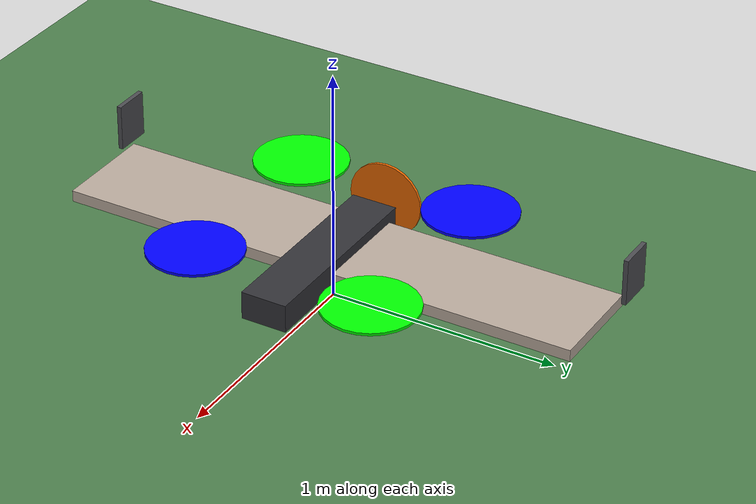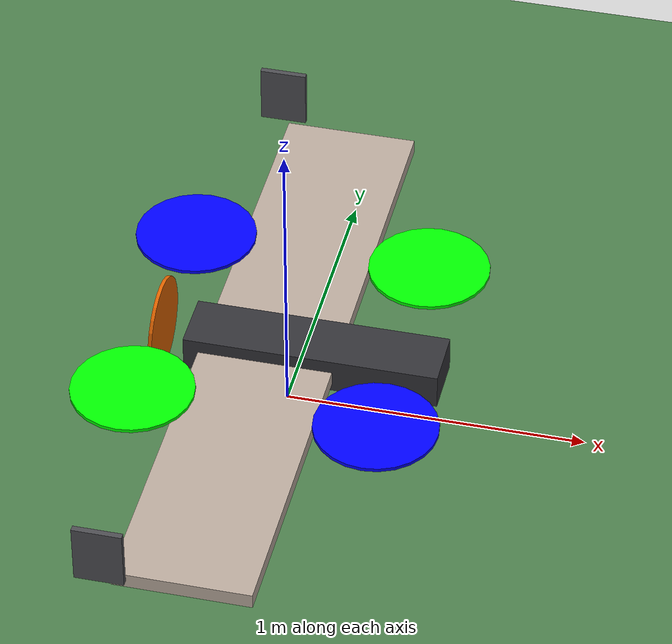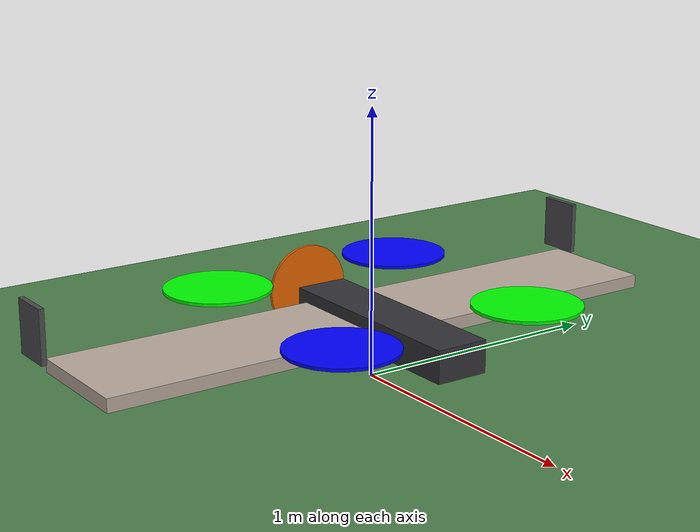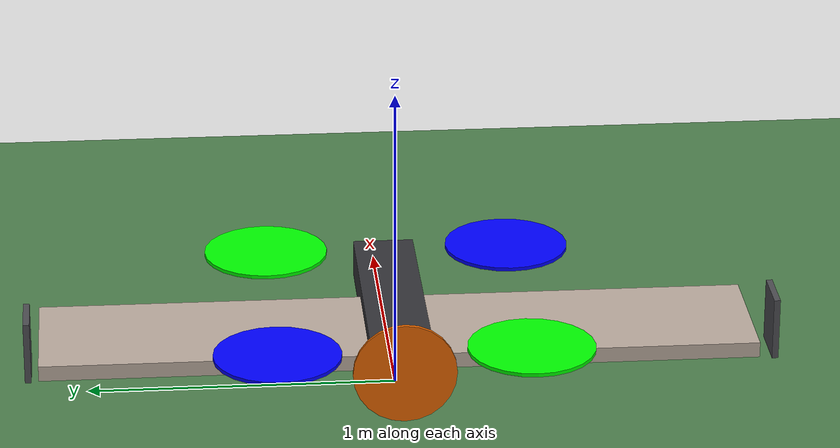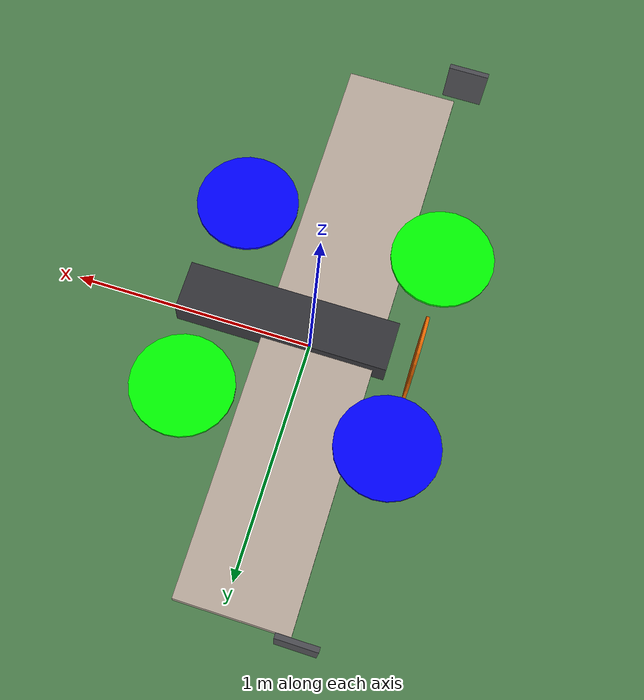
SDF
<?xml version="1.0" ?>
<!-- quadplane_runway.sdf : runway world for the flying-wing quadplane.
     real_time_factor -1.0 lets SIM_SPEEDUP run faster than real time. -->
<sdf version="1.9">
  <world name="quadplane_runway">
    <physics name="1ms" type="ignore">
      <max_step_size>0.001</max_step_size>
      <real_time_factor>-1.0</real_time_factor>
    </physics>

    <plugin filename="gz-sim-physics-system"          name="gz::sim::systems::Physics"></plugin>
    <plugin filename="gz-sim-user-commands-system"    name="gz::sim::systems::UserCommands"></plugin>
    <plugin filename="gz-sim-scene-broadcaster-system" name="gz::sim::systems::SceneBroadcaster"></plugin>
    <plugin filename="gz-sim-imu-system"              name="gz::sim::systems::Imu"></plugin>
    <plugin filename="gz-sim-navsat-system"           name="gz::sim::systems::NavSat"></plugin>

    <scene>
      <ambient>1.0 1.0 1.0</ambient>
      <background>0.8 0.8 0.8</background>
      <sky></sky>
    </scene>

    <spherical_coordinates>
      <latitude_deg>-35.363262</latitude_deg>
      <longitude_deg>149.165237</longitude_deg>
      <elevation>584</elevation>
      <heading_deg>0</heading_deg>
      <surface_model>EARTH_WGS84</surface_model>
    </spherical_coordinates>

    <light type="directional" name="sun">
      <cast_shadows>true</cast_shadows>
      <pose>0 0 10 0 0 0</pose>
      <diffuse>0.8 0.8 0.8 1</diffuse>
      <specular>0.8 0.8 0.8 1</specular>
      <attenuation><range>1000</range><constant>0.9</constant><linear>0.01</linear><quadratic>0.001</quadratic></attenuation>
      <direction>-0.5 0.1 -0.9</direction>
    </light>

    <!-- ground (self-contained fallback if model://runway is not on the resource path) -->
    <model name="ground_plane">
      <static>true</static>
      <link name="link">
        <collision name="collision">
          <geometry><plane><normal>0 0 1</normal><size>2000 2000</size></plane></geometry>
          <surface><friction><ode><mu>1.0</mu><mu2>1.0</mu2></ode></friction></surface>
        </collision>
        <visual name="visual">
          <geometry><plane><normal>0 0 1</normal><size>2000 2000</size></plane></geometry>
          <material><ambient>0.3 0.5 0.3 1</ambient><diffuse>0.3 0.5 0.3 1</diffuse></material>
        </visual>
      </link>
    </model>

    <!-- the vehicle: already X-forward / Z-up, so no rotation; raise so skids touch ground -->
    <include>
      <uri>model://flying_wing_quadplane</uri>
      <pose degrees="true">0 0 0.20 0 0 0</pose>
    </include>

  </world>
</sdf>

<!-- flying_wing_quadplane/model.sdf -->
<sdf version="1.9">
  <model name="flying_wing_quadplane">
    <pose>0 0 0 0 0 0</pose>

    <!-- ============================ BODY ============================ -->
    <link name="base_link">
      <inertial>
        <!-- Full vehicle mass/inertia about CG (from XFLR5 point masses + 4.5 kg wing). -->
        <pose>0 0 0 0 0 0</pose>
        <mass>10.26</mass>
        <inertia>
          <ixx>1.9397</ixx>   <!-- roll  -->
          <iyy>0.4599</iyy>   <!-- pitch -->
          <izz>2.3685</izz>   <!-- yaw   -->
          <ixy>0</ixy>
          <ixz>0.0355</ixz>
          <iyz>0</iyz>
        </inertia>
      </inertial>

      <!-- visual: wing planform (box stand-in; swap for wing.dae mesh later) -->
      <visual name="wing_visual">
        <pose>-0.05 0 0 0 0 0</pose>
        <geometry><box><size>0.45 2.30 0.05</size></box></geometry>
        <material>
          <ambient>0.73 0.67 0.62 1</ambient>
          <diffuse>0.73 0.67 0.62 1</diffuse>
        </material>
      </visual>
      <!-- visual: centre body / nose -->
      <visual name="body_visual">
        <pose>0.10 0 0.01 0 0 0</pose>
        <geometry><box><size>0.85 0.20 0.12</size></box></geometry>
        <material>
          <ambient>0.2 0.2 0.22 1</ambient>
          <diffuse>0.2 0.2 0.22 1</diffuse>
        </material>
      </visual>
      <!-- visual: winglets -->
      <visual name="winglet_left_visual">
        <pose>-0.30 1.18 0.12 0 0 0</pose>
        <geometry><box><size>0.16 0.02 0.20</size></box></geometry>
        <material><ambient>0.3 0.3 0.32 1</ambient><diffuse>0.3 0.3 0.32 1</diffuse></material>
      </visual>
      <visual name="winglet_right_visual">
        <pose>-0.30 -1.18 0.12 0 0 0</pose>
        <geometry><box><size>0.16 0.02 0.20</size></box></geometry>
        <material><ambient>0.3 0.3 0.32 1</ambient><diffuse>0.3 0.3 0.32 1</diffuse></material>
      </visual>

      <!-- collision: wing slab + belly skids so it rests on the runway -->
      <collision name="wing_collision">
        <pose>-0.05 0 0 0 0 0</pose>
        <geometry><box><size>0.45 2.30 0.05</size></box></geometry>
      </collision>
      <collision name="skid_front">
        <pose>0.20 0 -0.10 0 0 0</pose>
        <geometry><box><size>0.06 0.30 0.16</size></box></geometry>
        <surface><friction><ode><mu>1.0</mu><mu2>1.0</mu2></ode></friction></surface>
      </collision>
      <collision name="skid_rear">
        <pose>-0.30 0 -0.10 0 0 0</pose>
        <geometry><box><size>0.06 0.30 0.16</size></box></geometry>
        <surface><friction><ode><mu>1.0</mu><mu2>1.0</mu2></ode></friction></surface>
      </collision>
    </link>

    <!-- ============================ IMU ============================ -->
    <link name="imu_link">
      <inertial>
        <mass>0.05</mass>
        <inertia><ixx>1e-5</ixx><ixy>0</ixy><ixz>0</ixz><iyy>1e-5</iyy><iyz>0</iyz><izz>1e-5</izz></inertia>
      </inertial>
      <sensor name="imu_sensor" type="imu">
        <gz_frame_id>imu_link</gz_frame_id>
        <pose degrees="true">0 0 0 180 0 0</pose>
        <always_on>1</always_on>
        <update_rate>1000.0</update_rate>
      </sensor>
    </link>
    <joint name="imu_joint" type="revolute">
      <parent>base_link</parent>
      <child>imu_link</child>
      <axis>
        <xyz>0 0 1</xyz>
        <limit><lower>0</lower><upper>0</upper><effort>0</effort><velocity>0</velocity></limit>
        <dynamics><damping>1.0</damping></dynamics>
      </axis>
    </joint>

    <!-- ===================== LIFT ROTORS (Quad-X) ===================== -->
    <!-- Motor map (ArduPilot QuadPlane): rotor_0 M1 FR/CCW, rotor_1 M2 RL/CCW,
         rotor_2 M3 FL/CW, rotor_3 M4 RR/CW  (identical ordering to iris). -->

    <!-- rotor_0 : FRONT-RIGHT, CCW -->
    <link name="rotor_0">
      <pose>0.390 -0.400 0.10 0 0 0</pose>
      <inertial><mass>0.08</mass>
        <inertia><ixx>4.0e-4</ixx><ixy>0</ixy><ixz>0</ixz><iyy>4.0e-4</iyy><iyz>0</iyz><izz>8.0e-4</izz></inertia>
      </inertial>
      <visual name="visual"><geometry><cylinder><radius>0.203</radius><length>0.012</length></cylinder></geometry>
        <material><ambient>0 0 1 1</ambient><diffuse>0 0 1 1</diffuse></material></visual>
      <collision name="collision"><geometry><cylinder><radius>0.203</radius><length>0.012</length></cylinder></geometry></collision>
    </link>
    <joint name="rotor_0_joint" type="revolute">
      <parent>base_link</parent><child>rotor_0</child>
      <axis><xyz>0 0 1</xyz><limit><lower>-1e16</lower><upper>1e16</upper></limit><dynamics><damping>0.004</damping></dynamics></axis>
    </joint>

    <!-- rotor_1 : REAR-LEFT, CCW -->
    <link name="rotor_1">
      <pose>-0.410 0.400 0.10 0 0 0</pose>
      <inertial><mass>0.08</mass>
        <inertia><ixx>4.0e-4</ixx><ixy>0</ixy><ixz>0</ixz><iyy>4.0e-4</iyy><iyz>0</iyz><izz>8.0e-4</izz></inertia>
      </inertial>
      <visual name="visual"><geometry><cylinder><radius>0.203</radius><length>0.012</length></cylinder></geometry>
        <material><ambient>0 0 1 1</ambient><diffuse>0 0 1 1</diffuse></material></visual>
      <collision name="collision"><geometry><cylinder><radius>0.203</radius><length>0.012</length></cylinder></geometry></collision>
    </link>
    <joint name="rotor_1_joint" type="revolute">
      <parent>base_link</parent><child>rotor_1</child>
      <axis><xyz>0 0 1</xyz><limit><lower>-1e16</lower><upper>1e16</upper></limit><dynamics><damping>0.004</damping></dynamics></axis>
    </joint>

    <!-- rotor_2 : FRONT-LEFT, CW -->
    <link name="rotor_2">
      <pose>0.390 0.400 0.10 0 0 0</pose>
      <inertial><mass>0.08</mass>
        <inertia><ixx>4.0e-4</ixx><ixy>0</ixy><ixz>0</ixz><iyy>4.0e-4</iyy><iyz>0</iyz><izz>8.0e-4</izz></inertia>
      </inertial>
      <visual name="visual"><geometry><cylinder><radius>0.203</radius><length>0.012</length></cylinder></geometry>
        <material><ambient>0 1 0 1</ambient><diffuse>0 1 0 1</diffuse></material></visual>
      <collision name="collision"><geometry><cylinder><radius>0.203</radius><length>0.012</length></cylinder></geometry></collision>
    </link>
    <joint name="rotor_2_joint" type="revolute">
      <parent>base_link</parent><child>rotor_2</child>
      <axis><xyz>0 0 1</xyz><limit><lower>-1e16</lower><upper>1e16</upper></limit><dynamics><damping>0.004</damping></dynamics></axis>
    </joint>

    <!-- rotor_3 : REAR-RIGHT, CW -->
    <link name="rotor_3">
      <pose>-0.410 -0.400 0.10 0 0 0</pose>
      <inertial><mass>0.08</mass>
        <inertia><ixx>4.0e-4</ixx><ixy>0</ixy><ixz>0</ixz><iyy>4.0e-4</iyy><iyz>0</iyz><izz>8.0e-4</izz></inertia>
      </inertial>
      <visual name="visual"><geometry><cylinder><radius>0.203</radius><length>0.012</length></cylinder></geometry>
        <material><ambient>0 1 0 1</ambient><diffuse>0 1 0 1</diffuse></material></visual>
      <collision name="collision"><geometry><cylinder><radius>0.203</radius><length>0.012</length></cylinder></geometry></collision>
    </link>
    <joint name="rotor_3_joint" type="revolute">
      <parent>base_link</parent><child>rotor_3</child>
      <axis><xyz>0 0 1</xyz><limit><lower>-1e16</lower><upper>1e16</upper></limit><dynamics><damping>0.004</damping></dynamics></axis>
    </joint>

    <!-- ===================== REAR PUSHER (cruise) ===================== -->
    <link name="pusher_prop">
      <pose>-0.42 0 0.03 0 0 0</pose>
      <inertial><mass>0.10</mass>
        <inertia><ixx>3.0e-4</ixx><ixy>0</ixy><ixz>0</ixz><iyy>3.0e-4</iyy><iyz>0</iyz><izz>6.0e-4</izz></inertia>
      </inertial>
      <visual name="visual"><pose>0 0 0 0 1.5708 0</pose>
        <geometry><cylinder><radius>0.165</radius><length>0.012</length></cylinder></geometry>
        <material><ambient>0.9 0.4 0 1</ambient><diffuse>0.9 0.4 0 1</diffuse></material></visual>
    </link>
    <joint name="pusher_joint" type="revolute">
      <parent>base_link</parent><child>pusher_prop</child>
      <axis><xyz>1 0 0</xyz><limit><lower>-1e16</lower><upper>1e16</upper></limit><dynamics><damping>0.004</damping></dynamics></axis>
    </joint>

    <!-- ===================== ELEVONS (L / R) ===================== -->
    <link name="flap_left">
      <pose>-0.167 0.55 0.0 0 0 0</pose>
      <inertial><mass>0.06</mass>
        <inertia><ixx>1.0e-4</ixx><ixy>0</ixy><ixz>0</ixz><iyy>2.0e-3</iyy><iyz>0</iyz><izz>2.0e-3</izz></inertia>
      </inertial>
      <visual name="visual"><geometry><box><size>0.12 0.55 0.02</size></box></geometry>
        <material><ambient>0.55 0.5 0.46 1</ambient><diffuse>0.55 0.5 0.46 1</diffuse></material></visual>
    </link>
    <joint name="flap_left_joint" type="revolute">
      <parent>base_link</parent><child>flap_left</child>
      <axis><xyz>0 1 0</xyz><limit><lower>-0.524</lower><upper>0.524</upper></limit><dynamics><damping>0.1</damping></dynamics></axis>
    </joint>

    <link name="flap_right">
      <pose>-0.167 -0.55 0.0 0 0 0</pose>
      <inertial><mass>0.06</mass>
        <inertia><ixx>1.0e-4</ixx><ixy>0</ixy><ixz>0</ixz><iyy>2.0e-3</iyy><iyz>0</iyz><izz>2.0e-3</izz></inertia>
      </inertial>
      <visual name="visual"><geometry><box><size>0.12 0.55 0.02</size></box></geometry>
        <material><ambient>0.55 0.5 0.46 1</ambient><diffuse>0.55 0.5 0.46 1</diffuse></material></visual>
    </link>
    <joint name="flap_right_joint" type="revolute">
      <parent>base_link</parent><child>flap_right</child>
      <axis><xyz>0 1 0</xyz><limit><lower>-0.524</lower><upper>0.524</upper></limit><dynamics><damping>0.1</damping></dynamics></axis>
    </joint>

    <plugin filename="gz-sim-joint-state-publisher-system"
            name="gz::sim::systems::JointStatePublisher"></plugin>

    <!-- LEFT wing half -->
    <plugin filename="gz-sim-lift-drag-system" name="gz::sim::systems::LiftDrag">
      <a0>-0.045</a0>            <!-- [C1] zero-lift AoA; flip sign if lift/trim is wrong -->
      <cla>4.265</cla>
      <cda>0.05</cda>
      <cma>0.0</cma>
      <alpha_stall>0.262</alpha_stall>
      <cla_stall>-3.85</cla_stall>
      <cda_stall>-0.92</cda_stall>
      <cma_stall>0.0</cma_stall>
      <cp>-0.014 0.50 0.03</cp>
      <area>0.43</area>
      <air_density>1.225</air_density>
      <forward>1 0 0</forward>
      <upward>0 0 1</upward>
      <link_name>base_link</link_name>
    </plugin>

    <!-- RIGHT wing half -->
    <plugin filename="gz-sim-lift-drag-system" name="gz::sim::systems::LiftDrag">
      <a0>-0.045</a0>
      <cla>4.265</cla>
      <cda>0.05</cda>
      <cma>0.0</cma>
      <alpha_stall>0.262</alpha_stall>
      <cla_stall>-3.85</cla_stall>
      <cda_stall>-0.92</cda_stall>
      <cma_stall>0.0</cma_stall>
      <cp>-0.014 -0.50 0.03</cp>
      <area>0.43</area>
      <air_density>1.225</air_density>
      <forward>1 0 0</forward>
      <upward>0 0 1</upward>
      <link_name>base_link</link_name>
    </plugin>

    <!-- LEFT elevon (control surface) -->
    <plugin filename="gz-sim-lift-drag-system" name="gz::sim::systems::LiftDrag">
      <a0>0.0</a0>
      <cla>4.0</cla>
      <cda>0.06</cda>
      <cma>0.0</cma>
      <alpha_stall>0.35</alpha_stall>
      <cla_stall>-3.85</cla_stall>
      <cda_stall>-0.92</cda_stall>
      <cma_stall>0.0</cma_stall>
      <cp>-0.30 0.55 0.0</cp>
      <area>0.09</area>
      <air_density>1.225</air_density>
      <forward>1 0 0</forward>
      <upward>0 0 1</upward>
      <link_name>base_link</link_name>
      <control_joint_name>flap_left_joint</control_joint_name>
      <control_joint_rad_to_cl>-4.0</control_joint_rad_to_cl>
    </plugin>

    <!-- RIGHT elevon (control surface) -->
    <plugin filename="gz-sim-lift-drag-system" name="gz::sim::systems::LiftDrag">
      <a0>0.0</a0>
      <cla>4.0</cla>
      <cda>0.06</cda>
      <cma>0.0</cma>
      <alpha_stall>0.35</alpha_stall>
      <cla_stall>-3.85</cla_stall>
      <cda_stall>-0.92</cda_stall>
      <cma_stall>0.0</cma_stall>
      <cp>-0.30 -0.55 0.0</cp>
      <area>0.09</area>
      <air_density>1.225</air_density>
      <forward>1 0 0</forward>
      <upward>0 0 1</upward>
      <link_name>base_link</link_name>
      <control_joint_name>flap_right_joint</control_joint_name>
      <control_joint_rad_to_cl>-4.0</control_joint_rad_to_cl>
    </plugin>

    <!-- LEFT winglet (vertical -> yaw stability) -->
    <plugin filename="gz-sim-lift-drag-system" name="gz::sim::systems::LiftDrag">
      <a0>0.0</a0><cla>3.8</cla><cda>0.06</cda><cma>0.0</cma>
      <alpha_stall>0.30</alpha_stall><cla_stall>-3.85</cla_stall><cda_stall>-0.92</cda_stall><cma_stall>0.0</cma_stall>
      <cp>-0.30 1.18 0.12</cp>
      <area>0.045</area>
      <air_density>1.225</air_density>
      <forward>1 0 0</forward>
      <upward>0 1 0</upward>
      <link_name>base_link</link_name>
    </plugin>
    <!-- RIGHT winglet -->
    <plugin filename="gz-sim-lift-drag-system" name="gz::sim::systems::LiftDrag">
      <a0>0.0</a0><cla>3.8</cla><cda>0.06</cda><cma>0.0</cma>
      <alpha_stall>0.30</alpha_stall><cla_stall>-3.85</cla_stall><cda_stall>-0.92</cda_stall><cma_stall>0.0</cma_stall>
      <cp>-0.30 -1.18 0.12</cp>
      <area>0.045</area>
      <air_density>1.225</air_density>
      <forward>1 0 0</forward>
      <upward>0 -1 0</upward>
      <link_name>base_link</link_name>
    </plugin>

    <!-- ===== ROTOR THRUST: 2 LiftDrag blades per rotor (iris pattern, scaled) =====
         area 0.0068 + cp r=0.152 + cmd 524 rad/s  =>  ~66 N max/motor (T/W 2.5). [C2] -->

    <!-- rotor_0 (CCW) -->
    <plugin filename="gz-sim-lift-drag-system" name="gz::sim::systems::LiftDrag">
      <a0>0.3</a0><alpha_stall>1.4</alpha_stall><cla>4.25</cla><cda>0.10</cda><cma>0.0</cma>
      <cla_stall>-0.025</cla_stall><cda_stall>0.0</cda_stall><cma_stall>0.0</cma_stall>
      <area>0.0068</area><air_density>1.225</air_density>
      <cp>0.152 0 0</cp><forward>0 1 0</forward><upward>0 0 1</upward>
      <link_name>rotor_0</link_name>
    </plugin>
    <plugin filename="gz-sim-lift-drag-system" name="gz::sim::systems::LiftDrag">
      <a0>0.3</a0><alpha_stall>1.4</alpha_stall><cla>4.25</cla><cda>0.10</cda><cma>0.0</cma>
      <cla_stall>-0.025</cla_stall><cda_stall>0.0</cda_stall><cma_stall>0.0</cma_stall>
      <area>0.0068</area><air_density>1.225</air_density>
      <cp>-0.152 0 0</cp><forward>0 -1 0</forward><upward>0 0 1</upward>
      <link_name>rotor_0</link_name>
    </plugin>

    <!-- rotor_1 (CCW) -->
    <plugin filename="gz-sim-lift-drag-system" name="gz::sim::systems::LiftDrag">
      <a0>0.3</a0><alpha_stall>1.4</alpha_stall><cla>4.25</cla><cda>0.10</cda><cma>0.0</cma>
      <cla_stall>-0.025</cla_stall><cda_stall>0.0</cda_stall><cma_stall>0.0</cma_stall>
      <area>0.0068</area><air_density>1.225</air_density>
      <cp>0.152 0 0</cp><forward>0 1 0</forward><upward>0 0 1</upward>
      <link_name>rotor_1</link_name>
    </plugin>
    <plugin filename="gz-sim-lift-drag-system" name="gz::sim::systems::LiftDrag">
      <a0>0.3</a0><alpha_stall>1.4</alpha_stall><cla>4.25</cla><cda>0.10</cda><cma>0.0</cma>
      <cla_stall>-0.025</cla_stall><cda_stall>0.0</cda_stall><cma_stall>0.0</cma_stall>
      <area>0.0068</area><air_density>1.225</air_density>
      <cp>-0.152 0 0</cp><forward>0 -1 0</forward><upward>0 0 1</upward>
      <link_name>rotor_1</link_name>
    </plugin>

    <!-- rotor_2 (CW) -->
    <plugin filename="gz-sim-lift-drag-system" name="gz::sim::systems::LiftDrag">
      <a0>0.3</a0><alpha_stall>1.4</alpha_stall><cla>4.25</cla><cda>0.10</cda><cma>0.0</cma>
      <cla_stall>-0.025</cla_stall><cda_stall>0.0</cda_stall><cma_stall>0.0</cma_stall>
      <area>0.0068</area><air_density>1.225</air_density>
      <cp>0.152 0 0</cp><forward>0 -1 0</forward><upward>0 0 1</upward>
      <link_name>rotor_2</link_name>
    </plugin>
    <plugin filename="gz-sim-lift-drag-system" name="gz::sim::systems::LiftDrag">
      <a0>0.3</a0><alpha_stall>1.4</alpha_stall><cla>4.25</cla><cda>0.10</cda><cma>0.0</cma>
      <cla_stall>-0.025</cla_stall><cda_stall>0.0</cda_stall><cma_stall>0.0</cma_stall>
      <area>0.0068</area><air_density>1.225</air_density>
      <cp>-0.152 0 0</cp><forward>0 1 0</forward><upward>0 0 1</upward>
      <link_name>rotor_2</link_name>
    </plugin>

    <!-- rotor_3 (CW) -->
    <plugin filename="gz-sim-lift-drag-system" name="gz::sim::systems::LiftDrag">
      <a0>0.3</a0><alpha_stall>1.4</alpha_stall><cla>4.25</cla><cda>0.10</cda><cma>0.0</cma>
      <cla_stall>-0.025</cla_stall><cda_stall>0.0</cda_stall><cma_stall>0.0</cma_stall>
      <area>0.0068</area><air_density>1.225</air_density>
      <cp>0.152 0 0</cp><forward>0 -1 0</forward><upward>0 0 1</upward>
      <link_name>rotor_3</link_name>
    </plugin>
    <plugin filename="gz-sim-lift-drag-system" name="gz::sim::systems::LiftDrag">
      <a0>0.3</a0><alpha_stall>1.4</alpha_stall><cla>4.25</cla><cda>0.10</cda><cma>0.0</cma>
      <cla_stall>-0.025</cla_stall><cda_stall>0.0</cda_stall><cma_stall>0.0</cma_stall>
      <area>0.0068</area><air_density>1.225</air_density>
      <cp>-0.152 0 0</cp><forward>0 1 0</forward><upward>0 0 1</upward>
      <link_name>rotor_3</link_name>
    </plugin>

    <!-- ===== PUSHER THRUST: 2 LiftDrag blades, spins about +X, thrust +X ===== -->
    <plugin filename="gz-sim-lift-drag-system" name="gz::sim::systems::LiftDrag">
      <a0>0.3</a0><alpha_stall>1.4</alpha_stall><cla>4.25</cla><cda>0.10</cda><cma>0.0</cma>
      <cla_stall>-0.025</cla_stall><cda_stall>0.0</cda_stall><cma_stall>0.0</cma_stall>
      <area>0.0024</area><air_density>1.225</air_density>
      <cp>0 0 0.13</cp><forward>0 -1 0</forward><upward>1 0 0</upward>
      <link_name>pusher_prop</link_name>
    </plugin>
    <plugin filename="gz-sim-lift-drag-system" name="gz::sim::systems::LiftDrag">
      <a0>0.3</a0><alpha_stall>1.4</alpha_stall><cla>4.25</cla><cda>0.10</cda><cma>0.0</cma>
      <cla_stall>-0.025</cla_stall><cda_stall>0.0</cda_stall><cma_stall>0.0</cma_stall>
      <area>0.0024</area><air_density>1.225</air_density>
      <cp>0 0 -0.13</cp><forward>0 1 0</forward><upward>1 0 0</upward>
      <link_name>pusher_prop</link_name>
    </plugin>

    <!-- ===== Apply-joint-force enablers (one per actuated joint) ===== -->
    <plugin filename="gz-sim-apply-joint-force-system" name="gz::sim::systems::ApplyJointForce"><joint_name>rotor_0_joint</joint_name></plugin>
    <plugin filename="gz-sim-apply-joint-force-system" name="gz::sim::systems::ApplyJointForce"><joint_name>rotor_1_joint</joint_name></plugin>
    <plugin filename="gz-sim-apply-joint-force-system" name="gz::sim::systems::ApplyJointForce"><joint_name>rotor_2_joint</joint_name></plugin>
    <plugin filename="gz-sim-apply-joint-force-system" name="gz::sim::systems::ApplyJointForce"><joint_name>rotor_3_joint</joint_name></plugin>
    <plugin filename="gz-sim-apply-joint-force-system" name="gz::sim::systems::ApplyJointForce"><joint_name>pusher_joint</joint_name></plugin>
    <plugin filename="gz-sim-apply-joint-force-system" name="gz::sim::systems::ApplyJointForce"><joint_name>flap_left_joint</joint_name></plugin>
    <plugin filename="gz-sim-apply-joint-force-system" name="gz::sim::systems::ApplyJointForce"><joint_name>flap_right_joint</joint_name></plugin>

    <!-- ======================= ArduPilot bridge ======================= -->
    <plugin name="ArduPilotPlugin" filename="ArduPilotPlugin">
      <fdm_addr>127.0.0.1</fdm_addr>
      <fdm_port_in>9002</fdm_port_in>
      <connectionTimeoutMaxCount>5</connectionTimeoutMaxCount>
      <lock_step>1</lock_step>
      <no_time_sync>1</no_time_sync>
      <have_32_channels>0</have_32_channels>

      <!-- This model is already X-forward, Z-up (like iris). -->
      <modelXYZToAirplaneXForwardZDown degrees="true">0 0 0 180 0 0</modelXYZToAirplaneXForwardZDown>
      <gazeboXYZToNED degrees="true">0 0 0 180 0 90</gazeboXYZToNED>

      <imuName>flying_wing_quadplane::imu_link::imu_sensor</imuName>

      <!-- ch0 = SERVO1 = Elevon Left  (func 77) -->
      <control channel="0">
        <jointName>flap_left_joint</jointName>
        <useForce>1</useForce>
        <type>POSITION</type>
        <multiplier>-1.048</multiplier>
        <offset>-0.5</offset>
        <servo_min>1100</servo_min><servo_max>1900</servo_max>
        <p_gain>10.0</p_gain><i_gain>0</i_gain><d_gain>0</d_gain>
        <i_max>0</i_max><i_min>0</i_min><cmd_max>2.5</cmd_max><cmd_min>-2.5</cmd_min>
      </control>

      <!-- ch1 = SERVO2 = Elevon Right (func 78) -->
      <control channel="1">
        <jointName>flap_right_joint</jointName>
        <useForce>1</useForce>
        <type>POSITION</type>
        <multiplier>-1.048</multiplier>
        <offset>-0.5</offset>
        <servo_min>1100</servo_min><servo_max>1900</servo_max>
        <p_gain>10.0</p_gain><i_gain>0</i_gain><d_gain>0</d_gain>
        <i_max>0</i_max><i_min>0</i_min><cmd_max>2.5</cmd_max><cmd_min>-2.5</cmd_min>
      </control>

      <!-- ch2 = SERVO3 = Throttle / rear pusher (func 70) -->
      <control channel="2">
        <jointName>pusher_joint</jointName>
        <useForce>1</useForce>
        <type>VELOCITY</type>
        <multiplier>700</multiplier>
        <offset>0</offset>
        <servo_min>1100</servo_min><servo_max>1900</servo_max>
        <p_gain>0.20</p_gain><i_gain>0</i_gain><d_gain>0</d_gain>
        <i_max>0</i_max><i_min>0</i_min><cmd_max>2.5</cmd_max><cmd_min>0.0</cmd_min>
      </control>

      <!-- ch4 = SERVO5 = VTOL Motor 1 = rotor_0 FRONT-RIGHT CCW (func 33) -->
      <control channel="4">
        <jointName>rotor_0_joint</jointName>
        <useForce>1</useForce>
        <type>VELOCITY</type>
        <multiplier>524</multiplier>
        <offset>0</offset>
        <servo_min>1100</servo_min><servo_max>1900</servo_max>
        <p_gain>0.20</p_gain><i_gain>0</i_gain><d_gain>0</d_gain>
        <i_max>0</i_max><i_min>0</i_min><cmd_max>2.5</cmd_max><cmd_min>-2.5</cmd_min>
        <controlVelocitySlowdownSim>1</controlVelocitySlowdownSim>
      </control>

      <!-- ch5 = SERVO6 = VTOL Motor 2 = rotor_1 REAR-LEFT CCW (func 34) -->
      <control channel="5">
        <jointName>rotor_1_joint</jointName>
        <useForce>1</useForce>
        <type>VELOCITY</type>
        <multiplier>524</multiplier>
        <offset>0</offset>
        <servo_min>1100</servo_min><servo_max>1900</servo_max>
        <p_gain>0.20</p_gain><i_gain>0</i_gain><d_gain>0</d_gain>
        <i_max>0</i_max><i_min>0</i_min><cmd_max>2.5</cmd_max><cmd_min>-2.5</cmd_min>
        <controlVelocitySlowdownSim>1</controlVelocitySlowdownSim>
      </control>

      <!-- ch6 = SERVO7 = VTOL Motor 3 = rotor_2 FRONT-LEFT CW (func 35) -->
      <control channel="6">
        <jointName>rotor_2_joint</jointName>
        <useForce>1</useForce>
        <type>VELOCITY</type>
        <multiplier>-524</multiplier>
        <offset>0</offset>
        <servo_min>1100</servo_min><servo_max>1900</servo_max>
        <p_gain>0.20</p_gain><i_gain>0</i_gain><d_gain>0</d_gain>
        <i_max>0</i_max><i_min>0</i_min><cmd_max>2.5</cmd_max><cmd_min>-2.5</cmd_min>
        <controlVelocitySlowdownSim>1</controlVelocitySlowdownSim>
      </control>

      <!-- ch7 = SERVO8 = VTOL Motor 4 = rotor_3 REAR-RIGHT CW (func 36) -->
      <control channel="7">
        <jointName>rotor_3_joint</jointName>
        <useForce>1</useForce>
        <type>VELOCITY</type>
        <multiplier>-524</multiplier>
        <offset>0</offset>
        <servo_min>1100</servo_min><servo_max>1900</servo_max>
        <p_gain>0.20</p_gain><i_gain>0</i_gain><d_gain>0</d_gain>
        <i_max>0</i_max><i_min>0</i_min><cmd_max>2.5</cmd_max><cmd_min>-2.5</cmd_min>
        <controlVelocitySlowdownSim>1</controlVelocitySlowdownSim>
      </control>

    </plugin>
  </model>
</sdf>
